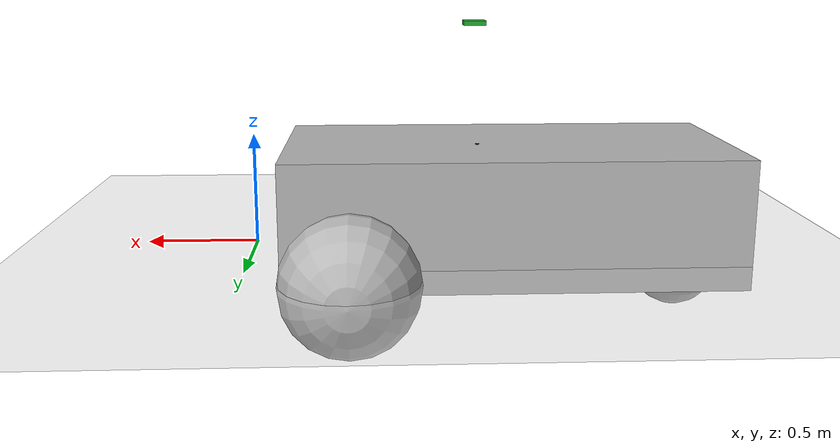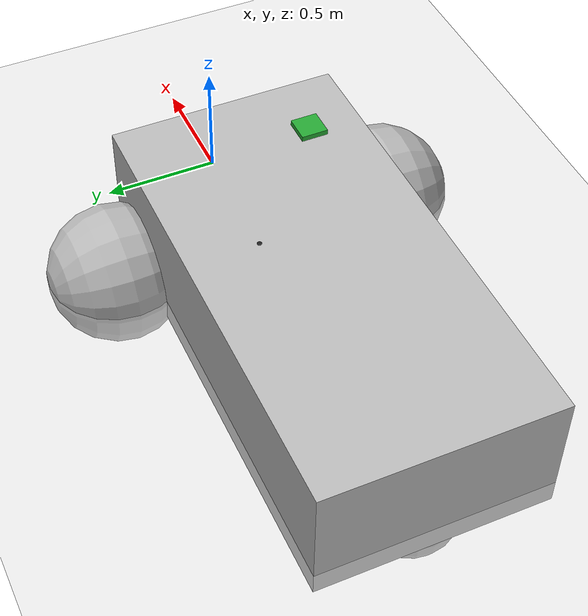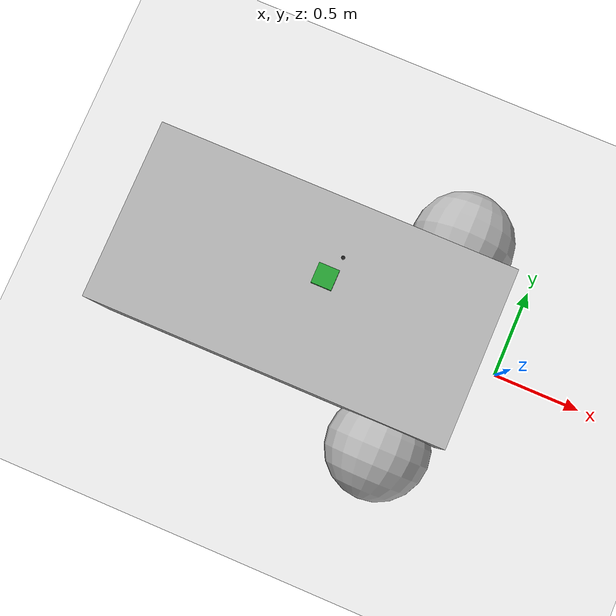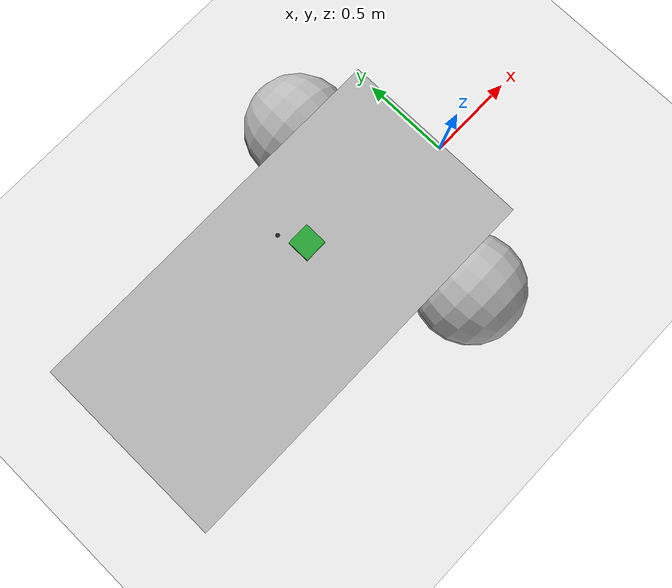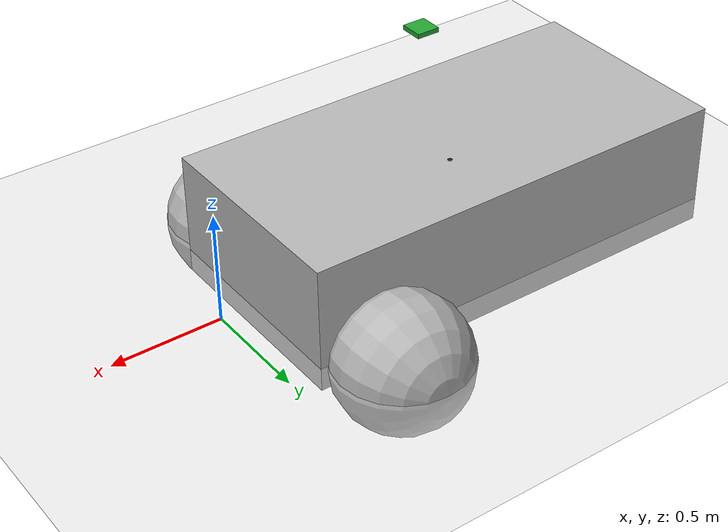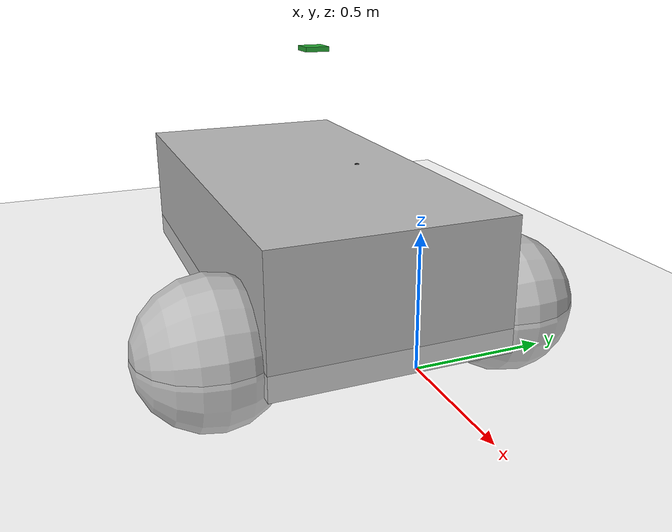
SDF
<sdf version="1.5">
 <world name="hitl_iris_world">
  <scene><ambient>0.7 0.7 0.7 1</ambient><background>0.7 0.7 0.7 1</background><shadows>false</shadows></scene>
  <include><uri>model://sun</uri></include>
  <physics name="default_physics" default="0" type="ode">
   <gravity>0 0 -9.8066</gravity>
   <ode>
    <solver>
     <type>quick</type>
     <iters>10</iters>
     <sor>1.3</sor>
     <use_dynamic_moi_rescaling>0</use_dynamic_moi_rescaling>
    </solver>
    <constraints>
     <cfm>0</cfm>
     <erp>0.2</erp>
     <contact_max_correcting_vel>100</contact_max_correcting_vel>
     <contact_surface_layer>0.001</contact_surface_layer>
    </constraints>
   </ode>
   <max_step_size>0.004</max_step_size>
   <real_time_factor>1</real_time_factor>
   <real_time_update_rate>250</real_time_update_rate>
   <magnetic_field>6.0e-6 2.3e-5 -4.2e-5</magnetic_field>
  </physics>
  <include><uri>model://ground_plane</uri></include>
  <include><uri>model://cap_car</uri><pose>-1 0 0 0 0 0</pose></include>
  <include><uri>model://irlock_beacon</uri><pose>-1 0 1 0 0 0</pose></include>
 </world>
</sdf>

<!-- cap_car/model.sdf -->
<sdf version="1.5">
<model name='vehicle'>
      <pose>0 0 2 0 -0 0</pose>

      <link name='chassis'>
        <pose>-0.151427 -0 0.175 0 -0 0</pose>
        <inertial>
          <mass>10.14395</mass>
          <inertia>
            <ixx>0.126164</ixx>
            <ixy>0</ixy>
            <ixz>0</ixz>
            <iyy>0.416519</iyy>
            <iyz>0</iyz>
            <izz>0.481014</izz>
          </inertia>
        </inertial>
        <visual name='visual'>
          <geometry>
            <box>
              <size>2.01142 1 0.568726</size>
            </box>
          </geometry>
        </visual>
        <collision name='collision'>
          <geometry>
            <box>
              <size>2.01142 1 0.568726</size>
            </box>
          </geometry>
            <surface>
            <friction>
              <ode>
                <mu>1</mu>
                <mu2>1</mu2>
                <slip1>0</slip1>
                <slip2>0</slip2>
              </ode>
            </friction>
            <contact>
              <ode>
                <soft_cfm>0</soft_cfm>
                <soft_erp>0.2</soft_erp>
                <kp>1e+13</kp>
                <kd>1</kd>
                <max_vel>0.01</max_vel>
                <min_depth>0.01</min_depth>
              </ode>
            </contact>
          </surface>
        </collision>
      </link>

      <link name='left_wheel'>
        <pose>0.554283 0.625029 -0.025 -1.5707 0 0</pose>
        <inertial>
          <mass>2</mass>
          <inertia>
            <ixx>0.145833</ixx>
            <ixy>0</ixy>
            <ixz>0</ixz>
            <iyy>0.145833</iyy>
            <iyz>0</iyz>
            <izz>0.125</izz>
          </inertia>
        </inertial>
        <visual name='visual'>
          <geometry>
            <sphere>
              <radius>0.3</radius>
            </sphere>
          </geometry>
        </visual>
        <collision name='collision'>
          <geometry>
            <sphere>
              <radius>0.3</radius>
            </sphere>
          </geometry>
          <surface>
            <friction>
              <ode>
                <mu>1</mu>
                <mu2>1</mu2>
                <slip1>0</slip1>
                <slip2>0</slip2>
              </ode>
            </friction>
            <contact>
              <ode>
                <soft_cfm>0</soft_cfm>
                <soft_erp>0.2</soft_erp>
                <kp>1e+13</kp>
                <kd>1</kd>
                <max_vel>0.01</max_vel>
                <min_depth>0.01</min_depth>
              </ode>
            </contact>
          </surface>
        </collision>
      </link>

      <link name='right_wheel'>
        <pose>0.554282 -0.625029 -0.025 -1.5707 0 0</pose>
        <inertial>
          <mass>2</mass>
          <inertia>
            <ixx>0.145833</ixx>
            <ixy>0</ixy>
            <ixz>0</ixz>n a vec
            <iyy>0.145833</iyy>
            <iyz>0</iyz>
            <izz>0.125</izz>
          </inertia>
        </inertial>
        <visual name='visual'>
          <geometry>
            <sphere>
              <radius>0.3</radius>
            </sphere>
          </geometry>
        </visual>
        <collision name='collision'>
          <geometry>
            <sphere>
              <radius>0.3</radius>
            </sphere>
          </geometry>
          <surface>
            <friction>
              <ode>
                <mu>1</mu>
                <mu2>1</mu2>
                <slip1>0</slip1>
                <slip2>0</slip2>
              </ode>
            </friction>
            <contact>
              <ode>
                <soft_cfm>0</soft_cfm>
                <soft_erp>0.2</soft_erp>
                <kp>1e+13</kp>
                <kd>1</kd>
                <max_vel>0.01</max_vel>
                <min_depth>0.01</min_depth>
              </ode>
            </contact>
          </surface>
        </collision>
      </link>

      <link name='caster'>
        <pose>-0.957138 -0 -0.125 0 -0 0</pose>
        <inertial>
          <mass>1</mass>
          <inertia>
            <ixx>0.1</ixx>
            <ixy>0</ixy>
            <ixz>0</ixz>
            <iyy>0.1</iyy>
            <iyz>0</iyz>
            <izz>0.1</izz>
          </inertia>
        </inertial>
        <visual name='visual'>
          <geometry>
            <sphere>
              <radius>0.2</radius>
            </sphere>
          </geometry>
        </visual>
        <collision name='collision'>
          <geometry>
            <sphere>
              <radius>0.2</radius>
            </sphere>
          </geometry>
        </collision>
      </link>

      <joint name='left_wheel_joint' type='revolute'>
        <parent>chassis</parent>
        <child>left_wheel</child>
        <axis>
          <xyz>0 0 1</xyz>
          <limit>
            <lower>-1.79769e+308</lower>
            <upper>1.79769e+308</upper>
          </limit>
        </axis>
      </joint>

      <joint name='right_wheel_joint' type='revolute'>
        <parent>chassis</parent>
        <child>right_wheel</child>
        <axis>
          <xyz>0 0 1</xyz>
          <limit>
            <lower>-1.79769e+308</lower>
            <upper>1.79769e+308</upper>
          </limit>
        </axis>
      </joint>

      <joint name='caster_wheel' type='ball'>
        <parent>chassis</parent>
        <child>caster</child>
      </joint>

      <plugin name='diff_drive' filename='libgazebo_ros_diff_drive.so'>

        <ros>
          <namespace>/demo</namespace>
          <remapping>cmd_vel:=key_vel</remapping>
          <remapping>odom:=odom</remapping>
        </ros>

        <!-- wheels -->
        <left_joint>left_wheel_joint</left_joint>
        <right_joint>right_wheel_joint</right_joint>

        <!-- kinematics -->
        <wheel_separation>1.25</wheel_separation>
        <wheel_diameter>0.6</wheel_diameter>

        <!-- limits -->
        <max_wheel_torque>20</max_wheel_torque>
        <max_wheel_acceleration>1.0</max_wheel_acceleration>

        <!-- output -->
        <publish_odom>true</publish_odom>
        <publish_odom_tf>true</publish_odom_tf>
        <publish_wheel_tf>true</publish_wheel_tf>

        <odometry_frame>odom_demo</odometry_frame>
        <robot_base_frame>chassis</robot_base_frame>

      </plugin>

    <include>
      <uri>model://gps_ros</uri>
      <name>gps1</name>
      <pose>0 0.2 0.484363 0 0 0</pose>
    </include>
    <joint name='gps1_joint' type='fixed'>
      <child>gps1::link</child>
      <parent>vehicle::chassis</parent>
    </joint>

  </model>
</sdf>

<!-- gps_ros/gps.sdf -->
<sdf version="1.6">
  <model name="gps">
    <link name="link">
      <pose>0 0 0 0 0 0</pose>
      <inertial>
        <pose>0 0 0 0 0 0</pose>
        <mass>0.015</mass>
        <inertia>
          <ixx>1e-05</ixx>
          <ixy>0</ixy>
          <ixz>0</ixz>
          <iyy>1e-05</iyy>
          <iyz>0</iyz>
          <izz>1e-05</izz>
        </inertia>
      </inertial>
      <visual name="visual">
        <geometry>
          <cylinder>
            <radius>0.01</radius>
            <length>0.002</length>
          </cylinder>
        </geometry>
        <material>
          <script>
            <name>Gazebo/Black</name>
          </script>
        </material>
      </visual>
      <sensor name="gps" type="gps">
        <pose>0 0 0 0 0 0</pose>
        <update_rate>5.0</update_rate>
        <always_on>true</always_on>
        <visualize>false</visualize>
        <!-- GpsSensor noise currently not used -->
        <plugin name="gps_plugin" filename="libgazebo_gps_plugin_ros.so">
          <robotNamespace>car</robotNamespace>
          <gpsNoise>true</gpsNoise>
          <gpsXYRandomWalk>2.0</gpsXYRandomWalk>
          <gpsZRandomWalk>4.0</gpsZRandomWalk>
          <gpsXYNoiseDensity>2.0e-4</gpsXYNoiseDensity>
          <gpsZNoiseDensity>4.0e-4</gpsZNoiseDensity>
          <gpsVXYNoiseDensity>0.2</gpsVXYNoiseDensity>
          <gpsVZNoiseDensity>0.4</gpsVZNoiseDensity>
        </plugin>
      </sensor>
    </link>
  </model>
</sdf>

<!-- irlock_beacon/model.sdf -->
<sdf version="1.4">
      <model name="irlock_beacon">
      <pose>0 0 1 0 0 0</pose>
      <link name="link">
         <inertial>
          <pose>0 0 0 0 0 0</pose>
          <mass>1</mass>
          <inertia>
            <ixx>0.01</ixx>
            <ixy>0</ixy>
            <ixz>0</ixz>
            <iyy>0.01</iyy>
            <iyz>0</iyz>
            <izz>0.01</izz>
          </inertia>
        </inertial>
        <collision name="collision">
          <geometry>
            <box>
              <size>0.1 0.1 0.01</size>
            </box>
          </geometry>
          <surface>
            <friction>
              <ode>
                <mu> 10000000</mu>
                <mu2>10000000</mu2>
                <slip1>0</slip1>
                <slip2>0</slip2>
              </ode>
            </friction>
            <contact>
              <ode>
                <kp>1e+12</kp>
                <kd>1</kd>
                <max_vel>10</max_vel>
                <min_depth>0.003</min_depth>
              </ode>
            </contact>
          </surface>
        </collision>
        <visual name="visual">
          <geometry>
            <box>
              <size>0.1 0.1 0.02</size>
            </box>
          </geometry>
          <material>
            <script>
              <name>Gazebo/Green</name>
            </script>
          </material>
        </visual>
      </link>
    </model>
</sdf>
<!-- vim: set et fenc=utf-8 ff=unix sts=0 sw=4 ts=4 : -->
